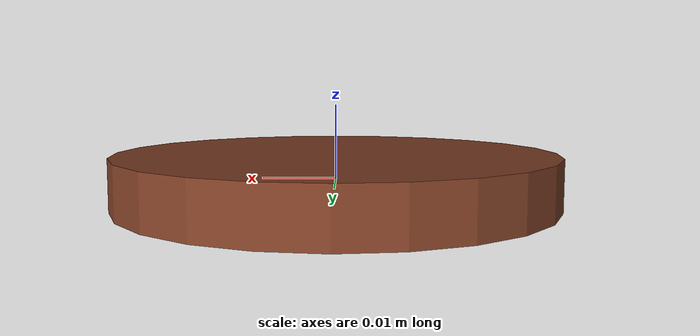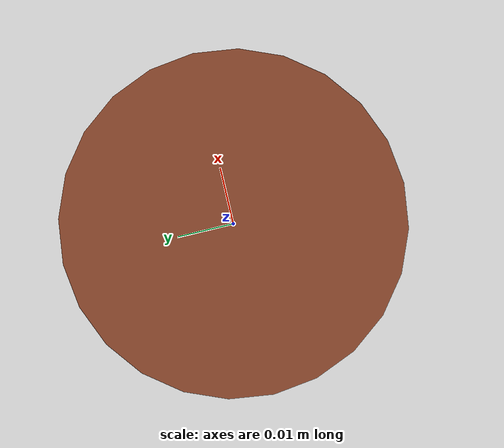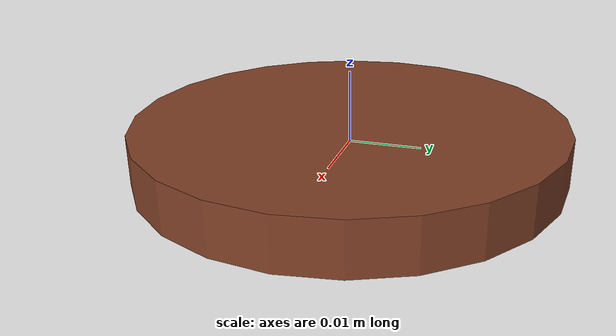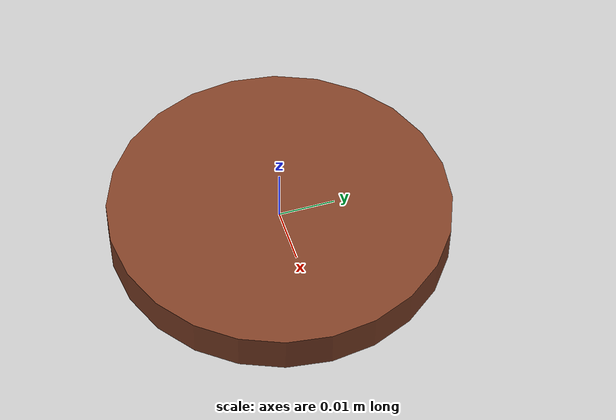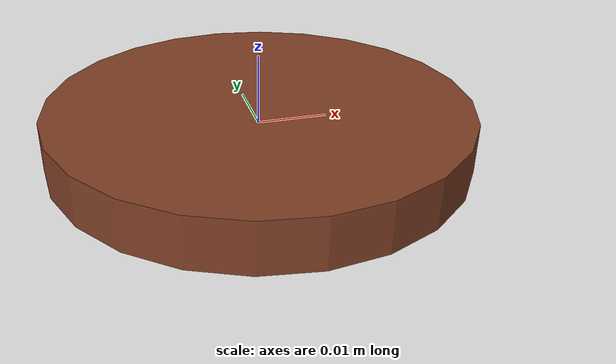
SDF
<?xml version='1.0' encoding='utf-8'?>
<sdf version="1.6">
  <model name="meat">
    <static>false</static>

    <link name="link">
      <pose>0 0 0 0 0 0</pose>

      <inertial>
        <mass>0.98960169</mass>
        <inertia>
          <ixx>0.00022670</ixx>
          <iyy>0.00022670</iyy>
          <izz>0.00044532</izz>
          <ixy>0.00000000</ixy>
          <ixz>0.00000000</ixz>
          <iyz>0.00000000</iyz>
        </inertia>
      </inertial>

      <collision name="collision">
        <geometry>
          <cylinder>
            <radius>0.03</radius>
            <length>0.007</length>
          </cylinder>
        </geometry>
        <surface>
          <contact>
            <collide_without_contact>false</collide_without_contact>
            <ode>
              <max_vel>0</max_vel>
              <min_depth>0.001</min_depth>
            </ode>
          </contact>
          <bounce>
            <restitution_coefficient>0.0</restitution_coefficient>
            <threshold>1.0</threshold>
          </bounce>
          <friction>
            <ode>
              <mu>1.5</mu>
              <mu2>1.5</mu2>
            </ode>
          </friction>
        </surface>
      </collision>

      <visual name="visual">
        <geometry>
          <cylinder>
            <radius>0.03</radius>
            <length>0.007</length>
          </cylinder>
        </geometry>
        <material>
          <ambient>0.4 0.2 0.1 1</ambient>
          <diffuse>0.5 0.25 0.15 1</diffuse>
          <specular>0.1 0.1 0.1 1</specular>
          <emissive>0 0 0 1</emissive>
        </material>
      </visual>
    </link>
  </model>
</sdf>
